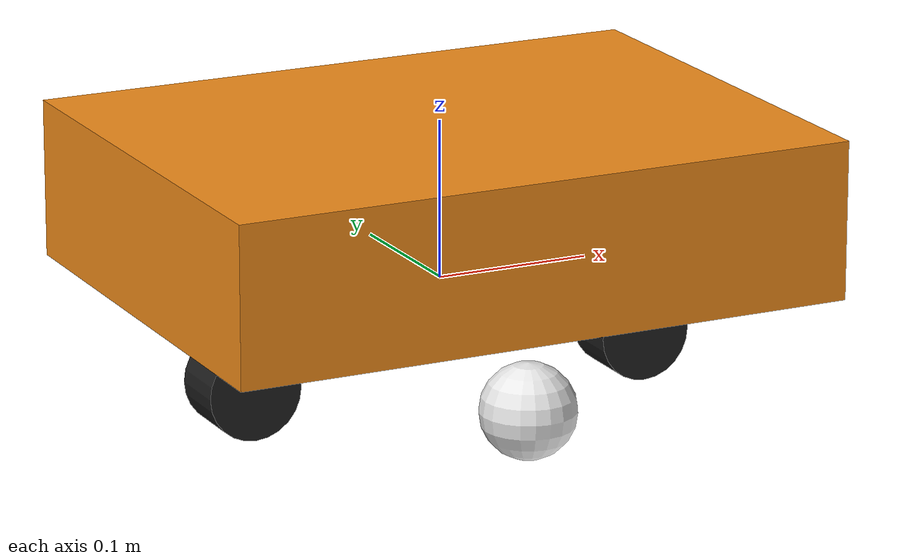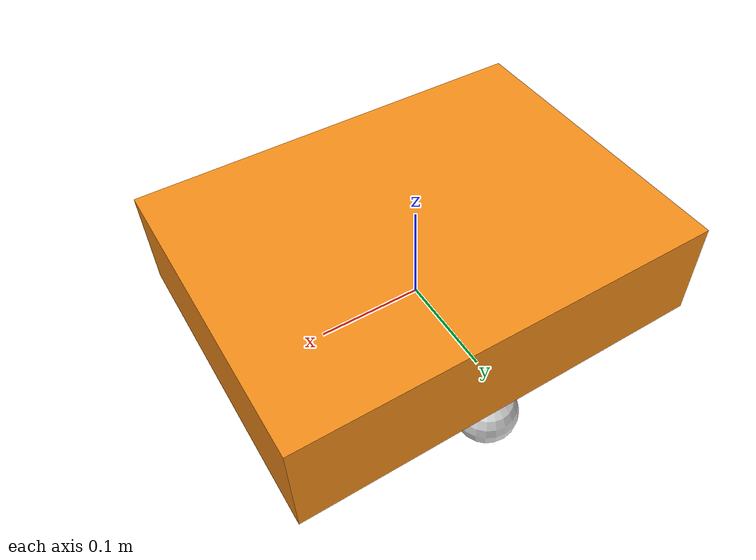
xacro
<?xml version="1.0"?>
<!-- Basic quad drive mobile base -->
<robot xmlns:xacro="http://www.ros.org/wiki/xacro" name="quaddrive_robot">
  <xacro:arg name="prefix" default="" />

  <xacro:include filename="$(find ignition_quad_drive)/urdf/quadbot_description.urdf.xacro" />

  <!-- Import Rviz colors -->
  <xacro:include filename="$(find ignition_quad_drive)/urdf/quadbot.materials.xacro" />

  <!-- Import quadbot ros2_control description -->
  <xacro:include filename="$(find ignition_quad_drive)/ros2_control/quadbot.ros2_control.xacro" />

  <xacro:quadbot prefix="$(arg prefix)" />
  <xacro:quadbot_ros2_control name="quadbot" prefix="$(arg prefix)" />

</robot>

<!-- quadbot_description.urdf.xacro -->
<robot xmlns:xacro="http://www.ros.org/wiki/xacro">

  <xacro:macro name="quadbot" params="prefix">

  <!-- Constants for robot dimensions -->
  <xacro:property name="PI" value="3.1415926535897931"/>
  <xacro:property name="base_mass" value="0.6" /> <!-- arbitrary value for base mass -->
  <xacro:property name="base_width" value="0.4" />
  <xacro:property name="base_length" value="0.3" />
  <xacro:property name="base_height" value="0.1" />
  <xacro:property name="wheel_mass" value="0.3" /> <!-- arbitrary value for wheel mass -->
  <xacro:property name="wheel_len" value="0.04" />
  <xacro:property name="wheel_radius" value="0.03" />
  <xacro:property name="caster_wheel_mass" value="0.1" /> <!-- arbitrary value for caster wheel mass -->
  <xacro:property name="caster_wheel_radius" value="0.03" />
  <xacro:property name="z_offset" value="-${base_height/2}" /> <!-- Space btw top of beam and the each joint -->

  <!-- Base Link -->
  <link name="${prefix}base_link">
    <collision>
      <origin xyz="0 0 0" rpy="0 0 0"/>
      <geometry>
        <box size="${base_width} ${base_length} ${base_height}"/>
      </geometry>
    </collision>

    <visual>
      <origin xyz="0 0 ${base_height/2}" rpy="0 0 0"/>
      <geometry>
        <box size="${base_width} ${base_length} ${base_height}"/>
      </geometry>
      <material name="orange"/>
    </visual>

    <inertial>
      <origin xyz="0 0 0" rpy="0 0 0"/>
      <mass value="${base_mass}"/>
      <inertia
        ixx="${base_mass / 12.0 * (base_length*base_length + base_height*base_height)}" ixy="0.0" ixz="0.0"
        iyy="${base_mass / 12.0 * (base_height*base_height + base_width*base_width)}" iyz="0.0"
        izz="${base_mass / 12.0 * (base_width*base_width + base_length*base_length)}"/>
      </inertial>
    </link>

    <joint name="${prefix}front_wheel_hinge_joint" type="revolute">
      <parent link="${prefix}base_link"/>
      <child link="${prefix}front_wheel_hinge"/>
      <origin xyz="${base_width/3} 0 ${z_offset}" rpy="0 ${PI/2} 0"/>
      <axis xyz="-1 0 0"/>
      <dynamics damping="0.2"/>
      <limit lower="-${PI/2}" upper="${PI/2}" effort="1000" velocity="100" />
    </joint>
    <link name="${prefix}front_wheel_hinge">
      <visual>
        <origin xyz="0 0 0" rpy="0 0 0"/>
        <geometry>
          <sphere radius="${caster_wheel_radius/2}"/>
        </geometry>
        <material name="white"/>
      </visual>
      <inertial>
        <origin xyz="0 0 0" rpy="0 0 0"/>
        <mass value="0.100"/>
        <inertia ixx="4E-06" ixy="0" ixz="0" iyy="4E-06" iyz="0" izz="4E-06"/>
      </inertial>
    </link>

    <!-- front wheel Link -->
    <link name="${prefix}front_wheel">
      <collision>
        <origin xyz="0 0 0" rpy="0 0 0"/>
        <geometry>
          <cylinder length="${wheel_len}" radius="${wheel_radius}"/>
        </geometry>
      </collision>
      <visual>
        <origin xyz="0 0 0" rpy="0 0 0"/>
        <geometry>
          <cylinder length="${wheel_len}" radius="${wheel_radius}"/>
        </geometry>
        <material name="black"/>
      </visual>
      <inertial>
        <origin xyz="0 0 0" rpy="0 0 0"/>
        <mass value="${wheel_mass}"/>
        <inertia
          ixx="${wheel_mass / 12.0 * (3*wheel_radius*wheel_radius + wheel_len*wheel_len)}" ixy="0.0" ixz="0.0"
          iyy="${wheel_mass / 12.0 * (3*wheel_radius*wheel_radius + wheel_len*wheel_len)}" iyz="0.0"
          izz="${wheel_mass / 2.0 * wheel_radius*wheel_radius}"/>
      </inertial>
    </link>
    <joint name="${prefix}front_wheel_joint" type="continuous">
      <parent link="${prefix}front_wheel_hinge"/>
      <child link="${prefix}front_wheel"/>
      <origin xyz="0 0 0" rpy="${PI/2} 0 0"/>
      <axis xyz="0 0 -1"/>
      <dynamics damping="0.2"/>
    </joint>

    <joint name="${prefix}rear_wheel_hinge_joint" type="revolute">
      <parent link="${prefix}base_link"/>
      <child link="${prefix}rear_wheel_hinge"/>
      <origin xyz="-${base_width/3} 0 ${z_offset}" rpy="0 ${PI/2} 0"/>
      <axis xyz="-1 0 0"/>
      <dynamics damping="0.2"/>
      <limit lower="-${PI/2}" upper="${PI/2}" effort="1000" velocity="100" />
    </joint>
    <link name="${prefix}rear_wheel_hinge">
      <visual>
        <origin xyz="0 0 0" rpy="0 0 0"/>
        <geometry>
          <sphere radius="${caster_wheel_radius/2}"/>
        </geometry>
        <material name="white"/>
      </visual>
      <inertial>
        <origin xyz="0 0 0" rpy="0 0 0"/>
        <mass value="0.100"/>
        <inertia ixx="4E-06" ixy="0" ixz="0" iyy="4E-06" iyz="0" izz="4E-06"/>
      </inertial>
    </link>

    <!-- rear wheel Link -->
    <link name="${prefix}rear_wheel">
      <collision>
        <origin xyz="0 0 0" rpy="0 0 0"/>
        <geometry>
          <cylinder length="${wheel_len}" radius="${wheel_radius}"/>
        </geometry>
      </collision>
      <visual>
        <origin xyz="0 0 0" rpy="0 0 0"/>
        <geometry>
          <cylinder length="${wheel_len}" radius="${wheel_radius}"/>
        </geometry>
        <material name="black"/>
      </visual>
      <inertial>
        <origin xyz="0 0 0" rpy="0 0 0"/>
        <mass value="${wheel_mass}"/>
        <inertia
          ixx="${wheel_mass / 12.0 * (3*wheel_radius*wheel_radius + wheel_len*wheel_len)}" ixy="0.0" ixz="0.0"
          iyy="${wheel_mass / 12.0 * (3*wheel_radius*wheel_radius + wheel_len*wheel_len)}" iyz="0.0"
          izz="${wheel_mass / 2.0 * wheel_radius*wheel_radius}"/>
      </inertial>
    </link>
    <joint name="${prefix}rear_wheel_joint" type="continuous">
      <parent link="${prefix}rear_wheel_hinge"/>
      <child link="${prefix}rear_wheel"/>
      <origin xyz="0 0 0" rpy="${PI/2} 0 0"/>
      <axis xyz="0 0 -1"/>
      <dynamics damping="0.2"/>
    </joint>

    <link name="${prefix}caster_left_wheel">
      <collision>
        <origin xyz="0 0 0" rpy="0 0 0"/>
        <geometry>
          <sphere radius="${caster_wheel_radius}"/>
        </geometry>
      </collision>
      <visual>
        <origin xyz="0 0 0" rpy="0 0 0"/>
        <geometry>
          <sphere radius="${caster_wheel_radius}"/>
        </geometry>
        <material name="white"/>
      </visual>
      <inertial>
        <origin xyz="0 0 0" rpy="0 0 0"/>
        <mass value="${caster_wheel_mass}"/>
        <inertia
          ixx="${caster_wheel_mass * 0.4 * (caster_wheel_radius * caster_wheel_radius)}" ixy="0.0" ixz="0.0"
          iyy="${caster_wheel_mass * 0.4 * (caster_wheel_radius * caster_wheel_radius)}" iyz="0.0"
          izz="${caster_wheel_mass * 0.4 * (caster_wheel_radius * caster_wheel_radius)}"/>
      </inertial>
    </link>
    <joint name="${prefix}caster_left_wheel_joint" type="fixed">
      <parent link="${prefix}base_link"/>
      <child link="${prefix}caster_left_wheel"/>
      <origin xyz="0 ${base_length/2 - caster_wheel_radius} ${z_offset}" rpy="0 0 0"/>
    </joint>

    <link name="${prefix}caster_right_wheel">
      <collision>
        <origin xyz="0 0 0" rpy="0 0 0"/>
        <geometry>
          <sphere radius="${caster_wheel_radius}"/>
        </geometry>
      </collision>
      <visual>
        <origin xyz="0 0 0" rpy="0 0 0"/>
        <geometry>
          <sphere radius="${caster_wheel_radius}"/>
        </geometry>
        <material name="white"/>
      </visual>
      <inertial>
        <origin xyz="0 0 0" rpy="0 0 0"/>
        <mass value="${caster_wheel_mass}"/>
        <inertia
          ixx="${caster_wheel_mass * 0.4 * (caster_wheel_radius * caster_wheel_radius)}" ixy="0.0" ixz="0.0"
          iyy="${caster_wheel_mass * 0.4 * (caster_wheel_radius * caster_wheel_radius)}" iyz="0.0"
          izz="${caster_wheel_mass * 0.4 * (caster_wheel_radius * caster_wheel_radius)}"/>
      </inertial>
    </link>
    <joint name="${prefix}caster_right_wheel_joint" type="fixed">
      <parent link="${prefix}base_link"/>
      <child link="${prefix}caster_right_wheel"/>
      <origin xyz="0 -${base_length/2 - caster_wheel_radius} ${z_offset}" rpy="0 0 0"/>
    </joint>

  </xacro:macro>

</robot>
